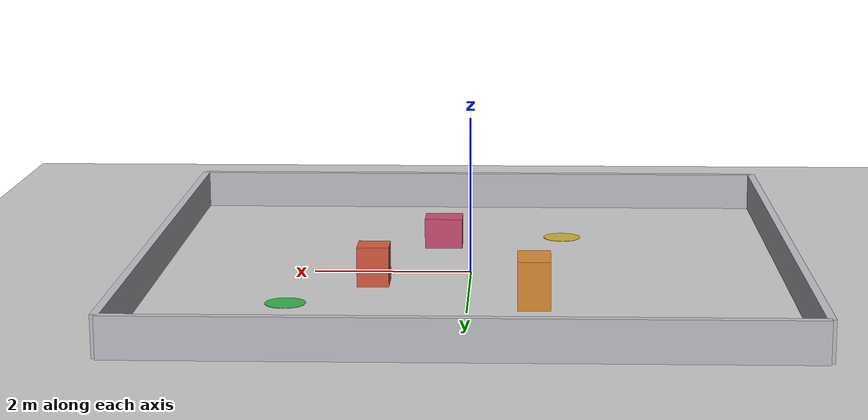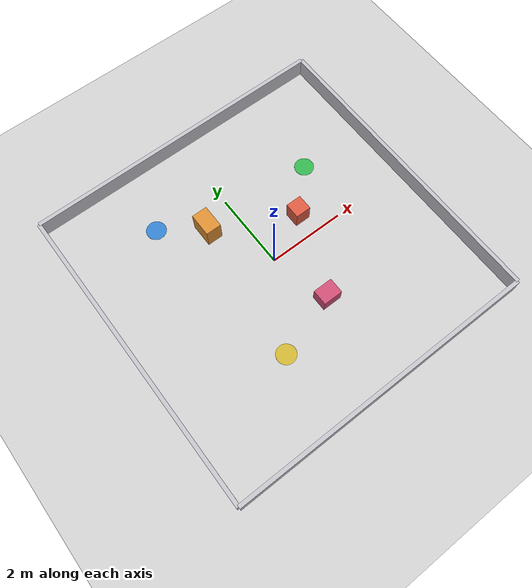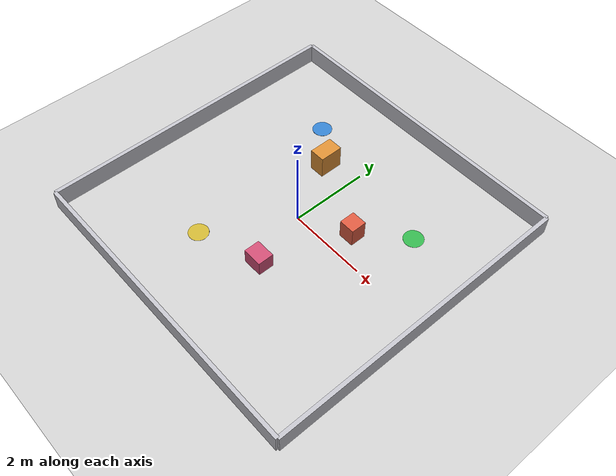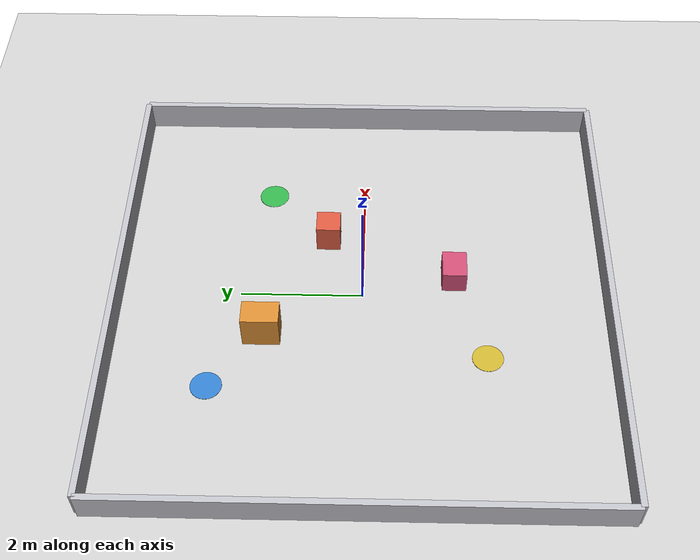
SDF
<?xml version="1.0"?>
<sdf version="1.6">
  <world name="mission">
    <include><uri>model://sun</uri></include>
    <include><uri>model://ground_plane</uri></include>

    <!-- 구역 경계 벽 -->
    <model name="wall_north"><static>true</static>
      <pose>0 4.0 0.25 0 0 0</pose>
      <link name="link">
        <collision name="c"><geometry><box><size>8.0 0.1 0.5</size></box></geometry></collision>
        <visual name="v"><geometry><box><size>8.0 0.1 0.5</size></box></geometry>
          <material><ambient>0.75 0.75 0.78 1</ambient><diffuse>0.75 0.75 0.78 1</diffuse></material></visual>
      </link></model>
    <model name="wall_south"><static>true</static>
      <pose>0 -4.0 0.25 0 0 0</pose>
      <link name="link">
        <collision name="c"><geometry><box><size>8.0 0.1 0.5</size></box></geometry></collision>
        <visual name="v"><geometry><box><size>8.0 0.1 0.5</size></box></geometry>
          <material><ambient>0.75 0.75 0.78 1</ambient><diffuse>0.75 0.75 0.78 1</diffuse></material></visual>
      </link></model>
    <model name="wall_east"><static>true</static>
      <pose>4.0 0 0.25 0 0 0</pose>
      <link name="link">
        <collision name="c"><geometry><box><size>0.1 8.0 0.5</size></box></geometry></collision>
        <visual name="v"><geometry><box><size>0.1 8.0 0.5</size></box></geometry>
          <material><ambient>0.75 0.75 0.78 1</ambient><diffuse>0.75 0.75 0.78 1</diffuse></material></visual>
      </link></model>
    <model name="wall_west"><static>true</static>
      <pose>-4.0 0 0.25 0 0 0</pose>
      <link name="link">
        <collision name="c"><geometry><box><size>0.1 8.0 0.5</size></box></geometry></collision>
        <visual name="v"><geometry><box><size>0.1 8.0 0.5</size></box></geometry>
          <material><ambient>0.75 0.75 0.78 1</ambient><diffuse>0.75 0.75 0.78 1</diffuse></material></visual>
      </link></model>

    <!-- 장애물 박스 3개 -->
    <model name="box_a"><static>true</static>
      <pose>1.2 0.6 0.25 0 0 0</pose>
      <link name="link">
        <collision name="c"><geometry><box><size>0.4 0.4 0.5</size></box></geometry></collision>
        <visual name="v"><geometry><box><size>0.4 0.4 0.5</size></box></geometry>
          <material><ambient>0.85 0.35 0.25 1</ambient><diffuse>0.85 0.35 0.25 1</diffuse></material></visual>
      </link></model>
    <model name="box_b"><static>true</static>
      <pose>-0.8 1.6 0.30 0 0 0</pose>
      <link name="link">
        <collision name="c"><geometry><box><size>0.4 0.6 0.6</size></box></geometry></collision>
        <visual name="v"><geometry><box><size>0.4 0.6 0.6</size></box></geometry>
          <material><ambient>0.85 0.55 0.20 1</ambient><diffuse>0.85 0.55 0.20 1</diffuse></material></visual>
      </link></model>
    <model name="box_c"><static>true</static>
      <pose>0.4 -1.5 0.20 0 0 0</pose>
      <link name="link">
        <collision name="c"><geometry><box><size>0.5 0.4 0.4</size></box></geometry></collision>
        <visual name="v"><geometry><box><size>0.5 0.4 0.4</size></box></geometry>
          <material><ambient>0.80 0.30 0.45 1</ambient><diffuse>0.80 0.30 0.45 1</diffuse></material></visual>
      </link></model>

    <!-- waypoint 마커(바닥 테이프 — 충돌 없음, 시각 전용) -->
    <model name="wp1"><static>true</static>
      <pose>2.2 1.6 0.003 0 0 0</pose>
      <link name="link"><visual name="v">
        <geometry><cylinder><radius>0.25</radius><length>0.005</length></cylinder></geometry>
        <material><ambient>0.2 0.7 0.3 1</ambient><diffuse>0.2 0.7 0.3 1</diffuse></material>
      </visual></link></model>
    <model name="wp2"><static>true</static>
      <pose>-1.8 2.4 0.003 0 0 0</pose>
      <link name="link"><visual name="v">
        <geometry><cylinder><radius>0.25</radius><length>0.005</length></cylinder></geometry>
        <material><ambient>0.2 0.5 0.8 1</ambient><diffuse>0.2 0.5 0.8 1</diffuse></material>
      </visual></link></model>
    <model name="wp3"><static>true</static>
      <pose>-1.2 -2.0 0.003 0 0 0</pose>
      <link name="link"><visual name="v">
        <geometry><cylinder><radius>0.25</radius><length>0.005</length></cylinder></geometry>
        <material><ambient>0.8 0.7 0.2 1</ambient><diffuse>0.8 0.7 0.2 1</diffuse></material>
      </visual></link></model>
  </world>
</sdf>
